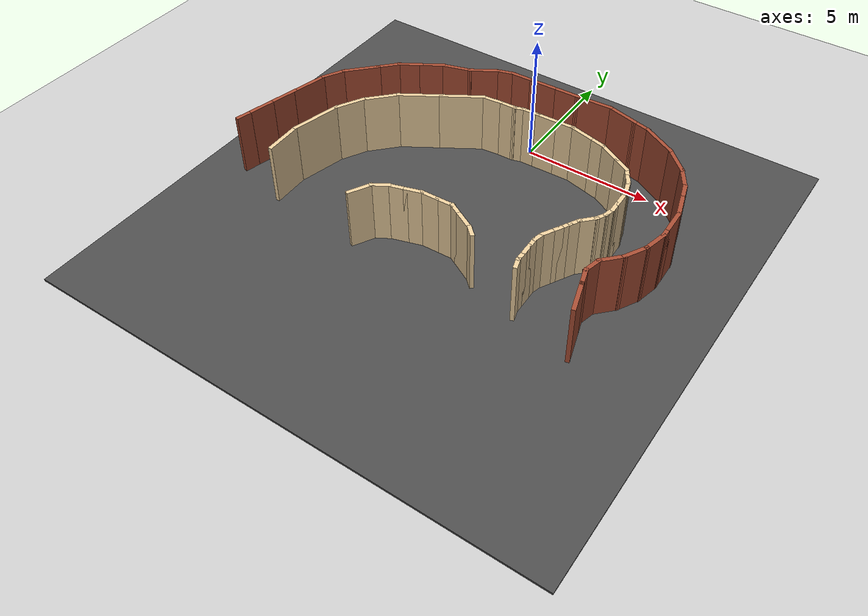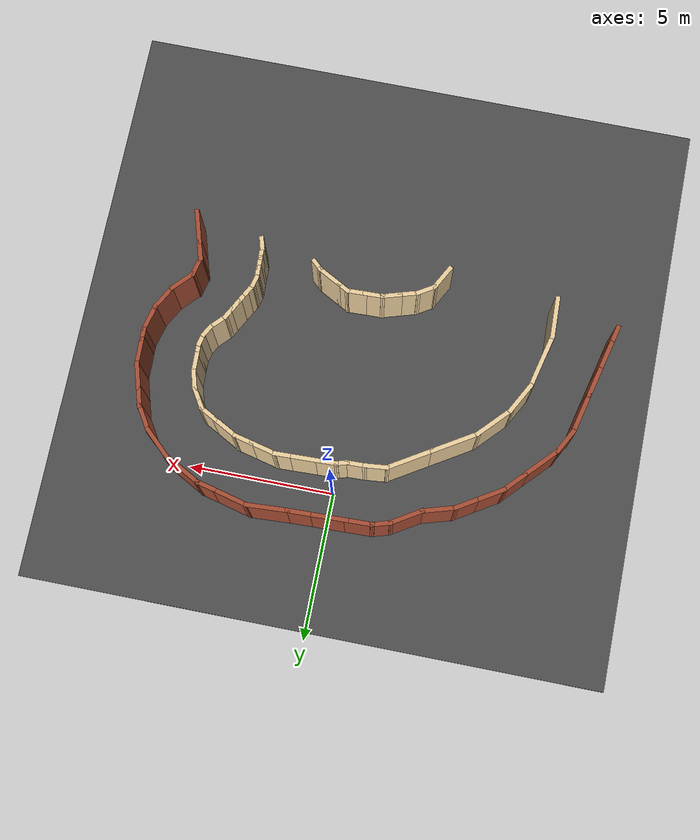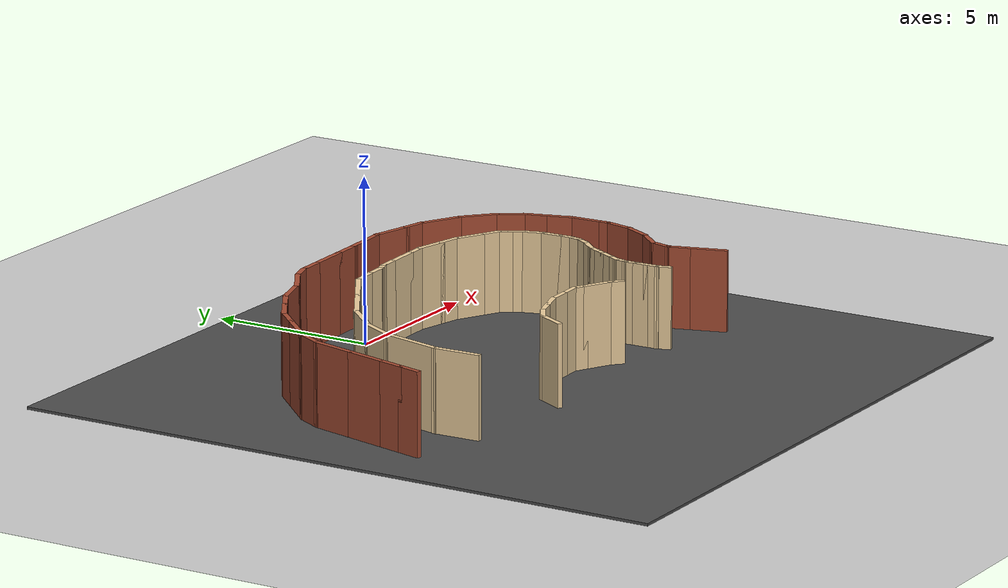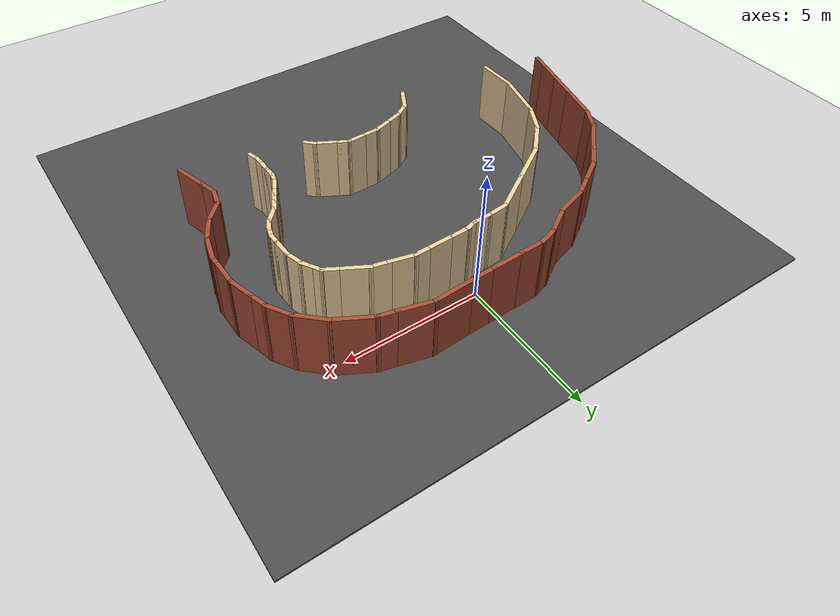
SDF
<sdf version="1.7">
 <world name="default">
  <model name="ground_plane">
   <static>1</static>
   <link name="link">
    <collision name="collision">
     <geometry><plane><normal>0 0 1</normal><size>100 100</size></plane></geometry>
     <surface><friction><ode><mu>100</mu><mu2>50</mu2></ode></friction></surface>
    </collision>
    <visual name="visual">
     <cast_shadows>0</cast_shadows>
     <geometry><plane><normal>0 0 1</normal><size>100 100</size></plane></geometry>
     <material>
      <script><uri>file://media/materials/scripts/gazebo.material</uri><name>Gazebo/Grey</name></script>
     </material>
    </visual>
   </link>
  </model>
  <model name="one">
   <pose>-0.558096 -6.76424 0 0 0 -1.54151</pose>
   <link name="Wall_364">
    <collision name="Wall_364_Collision">
     <geometry><box><size>1.32631 0.15 2.5</size></box></geometry>
     <pose>0 0 1.25 0 -0 0</pose>
    </collision>
    <visual name="Wall_364_Visual">
     <pose>0 0 1.25 0 -0 0</pose>
     <geometry><box><size>1.32631 0.15 2.5</size></box></geometry>
     <material>
      <script><uri>file://media/materials/scripts/gazebo.material</uri><name>Gazebo/Bricks</name></script>
      <ambient>1 1 1 1</ambient>
     </material>
     <meta><layer>0</layer></meta>
    </visual>
    <pose>-7.74423 3.9477 0 0 -0 1.29574</pose>
   </link>
   <link name="Wall_365">
    <collision name="Wall_365_Collision">
     <geometry><box><size>0.75 0.15 2.5</size></box></geometry>
     <pose>0 0 1.25 0 -0 0</pose>
    </collision>
    <visual name="Wall_365_Visual">
     <pose>0 0 1.25 0 -0 0</pose>
     <geometry><box><size>0.75 0.15 2.5</size></box></geometry>
     <material>
      <script><uri>file://media/materials/scripts/gazebo.material</uri><name>Gazebo/Bricks</name></script>
      <ambient>1 1 1 1</ambient>
     </material>
     <meta><layer>0</layer></meta>
    </visual>
    <pose>-7.50685 4.80352 0 0 -0 1.309</pose>
   </link>
   <link name="Wall_366">
    <collision name="Wall_366_Collision">
     <geometry><box><size>1.5 0.15 2.5</size></box></geometry>
     <pose>0 0 1.25 0 -0 0</pose>
    </collision>
    <visual name="Wall_366_Visual">
     <pose>0 0 1.25 0 -0 0</pose>
     <geometry><box><size>1.5 0.15 2.5</size></box></geometry>
     <material>
      <script><uri>file://media/materials/scripts/gazebo.material</uri><name>Gazebo/Bricks</name></script>
      <ambient>1 1 1 1</ambient>
     </material>
     <meta><layer>0</layer></meta>
    </visual>
    <pose>-7.0917 5.67786 0 0 -0 1.0472</pose>
   </link>
   <link name="Wall_367">
    <collision name="Wall_367_Collision">
     <geometry><box><size>1.25 0.15 2.5</size></box></geometry>
     <pose>0 0 1.25 0 -0 0</pose>
    </collision>
    <visual name="Wall_367_Visual">
     <pose>0 0 1.25 0 -0 0</pose>
     <geometry><box><size>1.25 0.15 2.5</size></box></geometry>
     <material>
      <script><uri>file://media/materials/scripts/gazebo.material</uri><name>Gazebo/Bricks</name></script>
      <ambient>1 1 1 1</ambient>
     </material>
     <meta><layer>0</layer></meta>
    </visual>
    <pose>-6.36529 6.65134 0 0 -0 0.785398</pose>
   </link>
   <link name="Wall_368">
    <collision name="Wall_368_Collision">
     <geometry><box><size>1 0.15 2.5</size></box></geometry>
     <pose>0 0 1.25 0 -0 0</pose>
    </collision>
    <visual name="Wall_368_Visual">
     <pose>0 0 1.25 0 -0 0</pose>
     <geometry><box><size>1 0.15 2.5</size></box></geometry>
     <material>
      <script><uri>file://media/materials/scripts/gazebo.material</uri><name>Gazebo/Bricks</name></script>
      <ambient>1 1 1 1</ambient>
     </material>
     <meta><layer>0</layer></meta>
    </visual>
    <pose>-5.60832 7.25275 0 0 -0 0.523599</pose>
   </link>
   <link name="Wall_369">
    <collision name="Wall_369_Collision">
     <geometry><box><size>0.75 0.15 2.5</size></box></geometry>
     <pose>0 0 1.25 0 -0 0</pose>
    </collision>
    <visual name="Wall_369_Visual">
     <pose>0 0 1.25 0 -0 0</pose>
     <geometry><box><size>0.75 0.15 2.5</size></box></geometry>
     <material>
      <script><uri>file://media/materials/scripts/gazebo.material</uri><name>Gazebo/Bricks</name></script>
      <ambient>1 1 1 1</ambient>
     </material>
     <meta><layer>0</layer></meta>
    </visual>
    <pose>-4.95048 7.54289 0 0 -0 0.261799</pose>
   </link>
   <link name="Wall_370">
    <collision name="Wall_370_Collision">
     <geometry><box><size>1 0.15 2.5</size></box></geometry>
     <pose>0 0 1.25 0 -0 0</pose>
    </collision>
    <visual name="Wall_370_Visual">
     <pose>0 0 1.25 0 -0 0</pose>
     <geometry><box><size>1 0.15 2.5</size></box></geometry>
     <material>
      <script><uri>file://media/materials/scripts/gazebo.material</uri><name>Gazebo/Bricks</name></script>
      <ambient>1 1 1 1</ambient>
     </material>
     <meta><layer>0</layer></meta>
    </visual>
    <pose>-4.25019 7.73054 0 0 -0 0.261799</pose>
   </link>
   <link name="Wall_371">
    <collision name="Wall_371_Collision">
     <geometry><box><size>1 0.15 2.5</size></box></geometry>
     <pose>0 0 1.25 0 -0 0</pose>
    </collision>
    <visual name="Wall_371_Visual">
     <pose>0 0 1.25 0 -0 0</pose>
     <geometry><box><size>1 0.15 2.5</size></box></geometry>
     <material>
      <script><uri>file://media/materials/scripts/gazebo.material</uri><name>Gazebo/Bricks</name></script>
      <ambient>1 1 1 1</ambient>
     </material>
     <meta><layer>0</layer></meta>
    </visual>
    <pose>-3.41467 7.84054 0 0 -0 0</pose>
   </link>
   <link name="Wall_372">
    <collision name="Wall_372_Collision">
     <geometry><box><size>0.5 0.15 2.5</size></box></geometry>
     <pose>0 0 1.25 0 -0 0</pose>
    </collision>
    <visual name="Wall_372_Visual">
     <pose>0 0 1.25 0 -0 0</pose>
     <geometry><box><size>0.5 0.15 2.5</size></box></geometry>
     <material>
      <script><uri>file://media/materials/scripts/gazebo.material</uri><name>Gazebo/Bricks</name></script>
      <ambient>1 1 1 1</ambient>
     </material>
     <meta><layer>0</layer></meta>
    </visual>
    <pose>-2.81467 7.84054 0 0 -0 0</pose>
   </link>
   <link name="Wall_373">
    <collision name="Wall_373_Collision">
     <geometry><box><size>1 0.15 2.5</size></box></geometry>
     <pose>0 0 1.25 0 -0 0</pose>
    </collision>
    <visual name="Wall_373_Visual">
     <pose>0 0 1.25 0 -0 0</pose>
     <geometry><box><size>1 0.15 2.5</size></box></geometry>
     <material>
      <script><uri>file://media/materials/scripts/gazebo.material</uri><name>Gazebo/Bricks</name></script>
      <ambient>1 1 1 1</ambient>
     </material>
     <meta><layer>0</layer></meta>
    </visual>
    <pose>-2.22915 7.73054 0 0 -0 -0.261799</pose>
   </link>
   <link name="Wall_374">
    <collision name="Wall_374_Collision">
     <geometry><box><size>1 0.15 2.5</size></box></geometry>
     <pose>0 0 1.25 0 -0 0</pose>
    </collision>
    <visual name="Wall_374_Visual">
     <pose>0 0 1.25 0 -0 0</pose>
     <geometry><box><size>1 0.15 2.5</size></box></geometry>
     <material>
      <script><uri>file://media/materials/scripts/gazebo.material</uri><name>Gazebo/Bricks</name></script>
      <ambient>1 1 1 1</ambient>
     </material>
     <meta><layer>0</layer></meta>
    </visual>
    <pose>-1.45057 7.40804 0 0 -0 -0.523599</pose>
   </link>
   <link name="Wall_375">
    <collision name="Wall_375_Collision">
     <geometry><box><size>1 0.15 2.5</size></box></geometry>
     <pose>0 0 1.25 0 -0 0</pose>
    </collision>
    <visual name="Wall_375_Visual">
     <pose>0 0 1.25 0 -0 0</pose>
     <geometry><box><size>1 0.15 2.5</size></box></geometry>
     <material>
      <script><uri>file://media/materials/scripts/gazebo.material</uri><name>Gazebo/Bricks</name></script>
      <ambient>1 1 1 1</ambient>
     </material>
     <meta><layer>0</layer></meta>
    </visual>
    <pose>-0.781989 6.89502 0 0 -0 -0.785398</pose>
   </link>
   <link name="Wall_376">
    <collision name="Wall_376_Collision">
     <geometry><box><size>0.75 0.15 2.5</size></box></geometry>
     <pose>0 0 1.25 0 -0 0</pose>
    </collision>
    <visual name="Wall_376_Visual">
     <pose>0 0 1.25 0 -0 0</pose>
     <geometry><box><size>0.75 0.15 2.5</size></box></geometry>
     <material>
      <script><uri>file://media/materials/scripts/gazebo.material</uri><name>Gazebo/Bricks</name></script>
      <ambient>1 1 1 1</ambient>
     </material>
     <meta><layer>0</layer></meta>
    </visual>
    <pose>-0.191691 6.51685 0 0 -0 -0.261799</pose>
   </link>
   <link name="Wall_377">
    <collision name="Wall_377_Collision">
     <geometry><box><size>0.75 0.15 2.5</size></box></geometry>
     <pose>0 0 1.25 0 -0 0</pose>
    </collision>
    <visual name="Wall_377_Visual">
     <pose>0 0 1.25 0 -0 0</pose>
     <geometry><box><size>0.75 0.15 2.5</size></box></geometry>
     <material>
      <script><uri>file://media/materials/scripts/gazebo.material</uri><name>Gazebo/Bricks</name></script>
      <ambient>1 1 1 1</ambient>
     </material>
     <meta><layer>0</layer></meta>
    </visual>
    <pose>0.387865 6.51685 0 0 -0 0.261799</pose>
   </link>
   <link name="Wall_378">
    <collision name="Wall_378_Collision">
     <geometry><box><size>1.25 0.15 2.5</size></box></geometry>
     <pose>0 0 1.25 0 -0 0</pose>
    </collision>
    <visual name="Wall_378_Visual">
     <pose>0 0 1.25 0 -0 0</pose>
     <geometry><box><size>1.25 0.15 2.5</size></box></geometry>
     <material>
      <script><uri>file://media/materials/scripts/gazebo.material</uri><name>Gazebo/Bricks</name></script>
      <ambient>1 1 1 1</ambient>
     </material>
     <meta><layer>0</layer></meta>
    </visual>
    <pose>1.2089 6.73685 0 0 -0 0.261799</pose>
   </link>
   <link name="Wall_397">
    <collision name="Wall_397_Collision">
     <geometry><box><size>1 0.15 2.5</size></box></geometry>
     <pose>0 0 1.25 0 -0 0</pose>
    </collision>
    <visual name="Wall_397_Visual">
     <pose>0 0 1.25 0 -0 0</pose>
     <geometry><box><size>1 0.15 2.5</size></box></geometry>
     <material>
      <script><uri>file://media/materials/scripts/gazebo.material</uri><name>Gazebo/Bricks</name></script>
      <ambient>1 1 1 1</ambient>
     </material>
     <meta><layer>0</layer></meta>
    </visual>
    <pose>-7.86919 -0.35856 0 0 -0 1.5708</pose>
   </link>
   <link name="Wall_398">
    <collision name="Wall_398_Collision">
     <geometry><box><size>1.25 0.15 2.5</size></box></geometry>
     <pose>0 0 1.25 0 -0 0</pose>
    </collision>
    <visual name="Wall_398_Visual">
     <pose>0 0 1.25 0 -0 0</pose>
     <geometry><box><size>1.25 0.15 2.5</size></box></geometry>
     <material>
      <script><uri>file://media/materials/scripts/gazebo.material</uri><name>Gazebo/Bricks</name></script>
      <ambient>1 1 1 1</ambient>
     </material>
     <meta><layer>0</layer></meta>
    </visual>
    <pose>-7.86919 0.61644 0 0 -0 1.5708</pose>
   </link>
   <link name="Wall_399">
    <collision name="Wall_399_Collision">
     <geometry><box><size>1 0.15 2.5</size></box></geometry>
     <pose>0 0 1.25 0 -0 0</pose>
    </collision>
    <visual name="Wall_399_Visual">
     <pose>0 0 1.25 0 -0 0</pose>
     <geometry><box><size>1 0.15 2.5</size></box></geometry>
     <material>
      <script><uri>file://media/materials/scripts/gazebo.material</uri><name>Gazebo/Bricks</name></script>
      <ambient>1 1 1 1</ambient>
     </material>
     <meta><layer>0</layer></meta>
    </visual>
    <pose>-7.86919 1.59144 0 0 -0 1.5708</pose>
   </link>
   <link name="Wall_400">
    <collision name="Wall_400_Collision">
     <geometry><box><size>1.51566 0.15 2.5</size></box></geometry>
     <pose>0 0 1.25 0 -0 0</pose>
    </collision>
    <visual name="Wall_400_Visual">
     <pose>0 0 1.25 0 -0 0</pose>
     <geometry><box><size>1.51566 0.15 2.5</size></box></geometry>
     <material>
      <script><uri>file://media/materials/scripts/gazebo.material</uri><name>Gazebo/Bricks</name></script>
      <ambient>1 1 1 1</ambient>
     </material>
     <meta><layer>0</layer></meta>
    </visual>
    <pose>-7.88658 2.69905 0 0 -0 1.59627</pose>
   </link>
   <link name="Wall_402">
    <collision name="Wall_402_Collision">
     <geometry><box><size>0.75 0.15 2.5</size></box></geometry>
     <pose>0 0 1.25 0 -0 0</pose>
    </collision>
    <visual name="Wall_402_Visual">
     <pose>0 0 1.25 0 -0 0</pose>
     <geometry><box><size>0.75 0.15 2.5</size></box></geometry>
     <material>
      <script><uri>file://media/materials/scripts/gazebo.material</uri><name>Gazebo/Bricks</name></script>
      <ambient>1 1 1 1</ambient>
     </material>
     <meta><layer>0</layer></meta>
    </visual>
    <pose>-7.79155 -1.07334 0 0 -0 -1.309</pose>
   </link>
   <link name="Wall_403">
    <collision name="Wall_403_Collision">
     <geometry><box><size>1.25 0.15 2.5</size></box></geometry>
     <pose>0 0 1.25 0 -0 0</pose>
    </collision>
    <visual name="Wall_403_Visual">
     <pose>0 0 1.25 0 -0 0</pose>
     <geometry><box><size>1.25 0.15 2.5</size></box></geometry>
     <material>
      <script><uri>file://media/materials/scripts/gazebo.material</uri><name>Gazebo/Bricks</name></script>
      <ambient>1 1 1 1</ambient>
     </material>
     <meta><layer>0</layer></meta>
    </visual>
    <pose>-7.4389 -1.83943 0 0 -0 -1.0472</pose>
   </link>
   <link name="Wall_404">
    <collision name="Wall_404_Collision">
     <geometry><box><size>1.25 0.15 2.5</size></box></geometry>
     <pose>0 0 1.25 0 -0 0</pose>
    </collision>
    <visual name="Wall_404_Visual">
     <pose>0 0 1.25 0 -0 0</pose>
     <geometry><box><size>1.25 0.15 2.5</size></box></geometry>
     <material>
      <script><uri>file://media/materials/scripts/gazebo.material</uri><name>Gazebo/Bricks</name></script>
      <ambient>1 1 1 1</ambient>
     </material>
     <meta><layer>0</layer></meta>
    </visual>
    <pose>-7.02155 -2.847 0 0 -0 -1.309</pose>
   </link>
   <link name="Wall_405">
    <collision name="Wall_405_Collision">
     <geometry><box><size>1 0.15 2.5</size></box></geometry>
     <pose>0 0 1.25 0 -0 0</pose>
    </collision>
    <visual name="Wall_405_Visual">
     <pose>0 0 1.25 0 -0 0</pose>
     <geometry><box><size>1 0.15 2.5</size></box></geometry>
     <material>
      <script><uri>file://media/materials/scripts/gazebo.material</uri><name>Gazebo/Bricks</name></script>
      <ambient>1 1 1 1</ambient>
     </material>
     <meta><layer>0</layer></meta>
    </visual>
    <pose>-6.6667 -3.74632 0 0 -0 -1.0472</pose>
   </link>
   <link name="Wall_406">
    <collision name="Wall_406_Collision">
     <geometry><box><size>1 0.15 2.5</size></box></geometry>
     <pose>0 0 1.25 0 -0 0</pose>
    </collision>
    <visual name="Wall_406_Visual">
     <pose>0 0 1.25 0 -0 0</pose>
     <geometry><box><size>1 0.15 2.5</size></box></geometry>
     <material>
      <script><uri>file://media/materials/scripts/gazebo.material</uri><name>Gazebo/Bricks</name></script>
      <ambient>1 1 1 1</ambient>
     </material>
     <meta><layer>0</layer></meta>
    </visual>
    <pose>-6.2417 -4.48245 0 0 -0 -1.0472</pose>
   </link>
   <link name="Wall_407">
    <collision name="Wall_407_Collision">
     <geometry><box><size>1 0.15 2.5</size></box></geometry>
     <pose>0 0 1.25 0 -0 0</pose>
    </collision>
    <visual name="Wall_407_Visual">
     <pose>0 0 1.25 0 -0 0</pose>
     <geometry><box><size>1 0.15 2.5</size></box></geometry>
     <material>
      <script><uri>file://media/materials/scripts/gazebo.material</uri><name>Gazebo/Bricks</name></script>
      <ambient>1 1 1 1</ambient>
     </material>
     <meta><layer>0</layer></meta>
    </visual>
    <pose>-5.72868 -5.15103 0 0 -0 -0.785398</pose>
   </link>
   <link name="Wall_408">
    <collision name="Wall_408_Collision">
     <geometry><box><size>1.5 0.15 2.5</size></box></geometry>
     <pose>0 0 1.25 0 -0 0</pose>
    </collision>
    <visual name="Wall_408_Visual">
     <pose>0 0 1.25 0 -0 0</pose>
     <geometry><box><size>1.5 0.15 2.5</size></box></geometry>
     <material>
      <script><uri>file://media/materials/scripts/gazebo.material</uri><name>Gazebo/Bricks</name></script>
      <ambient>1 1 1 1</ambient>
     </material>
     <meta><layer>0</layer></meta>
    </visual>
    <pose>-4.95086 -5.92884 0 0 -0 -0.785398</pose>
   </link>
   <link name="Wall_409">
    <collision name="Wall_409_Collision">
     <geometry><box><size>1 0.15 2.5</size></box></geometry>
     <pose>0 0 1.25 0 -0 0</pose>
    </collision>
    <visual name="Wall_409_Visual">
     <pose>0 0 1.25 0 -0 0</pose>
     <geometry><box><size>1 0.15 2.5</size></box></geometry>
     <material>
      <script><uri>file://media/materials/scripts/gazebo.material</uri><name>Gazebo/Bricks</name></script>
      <ambient>1 1 1 1</ambient>
     </material>
     <meta><layer>0</layer></meta>
    </visual>
    <pose>-4.1055 -6.61864 0 0 -0 -0.523599</pose>
   </link>
   <link name="Wall_410">
    <collision name="Wall_410_Collision">
     <geometry><box><size>1.5 0.15 2.5</size></box></geometry>
     <pose>0 0 1.25 0 -0 0</pose>
    </collision>
    <visual name="Wall_410_Visual">
     <pose>0 0 1.25 0 -0 0</pose>
     <geometry><box><size>1.5 0.15 2.5</size></box></geometry>
     <material>
      <script><uri>file://media/materials/scripts/gazebo.material</uri><name>Gazebo/Bricks</name></script>
      <ambient>1 1 1 1</ambient>
     </material>
     <meta><layer>0</layer></meta>
    </visual>
    <pose>-3.08544 -7.00584 0 0 -0 -0.261799</pose>
   </link>
   <link name="Wall_411">
    <collision name="Wall_411_Collision">
     <geometry><box><size>1.25 0.15 2.5</size></box></geometry>
     <pose>0 0 1.25 0 -0 0</pose>
    </collision>
    <visual name="Wall_411_Visual">
     <pose>0 0 1.25 0 -0 0</pose>
     <geometry><box><size>1.25 0.15 2.5</size></box></geometry>
     <material>
      <script><uri>file://media/materials/scripts/gazebo.material</uri><name>Gazebo/Bricks</name></script>
      <ambient>1 1 1 1</ambient>
     </material>
     <meta><layer>0</layer></meta>
    </visual>
    <pose>-1.90218 -7.3229 0 0 -0 -0.261799</pose>
   </link>
   <link name="Wall_412">
    <collision name="Wall_412_Collision">
     <geometry><box><size>1 0.15 2.5</size></box></geometry>
     <pose>0 0 1.25 0 -0 0</pose>
    </collision>
    <visual name="Wall_412_Visual">
     <pose>0 0 1.25 0 -0 0</pose>
     <geometry><box><size>1 0.15 2.5</size></box></geometry>
     <material>
      <script><uri>file://media/materials/scripts/gazebo.material</uri><name>Gazebo/Bricks</name></script>
      <ambient>1 1 1 1</ambient>
     </material>
     <meta><layer>0</layer></meta>
    </visual>
    <pose>-0.960406 -7.57524 0 0 -0 -0.261799</pose>
   </link>
   <link name="Wall_413">
    <collision name="Wall_413_Collision">
     <geometry><box><size>0.75 0.15 2.5</size></box></geometry>
     <pose>0 0 1.25 0 -0 0</pose>
    </collision>
    <visual name="Wall_413_Visual">
     <pose>0 0 1.25 0 -0 0</pose>
     <geometry><box><size>0.75 0.15 2.5</size></box></geometry>
     <material>
      <script><uri>file://media/materials/scripts/gazebo.material</uri><name>Gazebo/Bricks</name></script>
      <ambient>1 1 1 1</ambient>
     </material>
     <meta><layer>0</layer></meta>
    </visual>
    <pose>-0.26011 -7.76289 0 0 -0 -0.261799</pose>
   </link>
   <link name="Wall_434">
    <collision name="Wall_434_Collision">
     <geometry><box><size>0.75 0.15 2.5</size></box></geometry>
     <pose>0 0 1.25 0 -0 0</pose>
    </collision>
    <visual name="Wall_434_Visual">
     <pose>0 0 1.25 0 -0 0</pose>
     <geometry><box><size>0.75 0.15 2.5</size></box></geometry>
     <material>
      <script><uri>file://media/materials/scripts/gazebo.material</uri><name>Gazebo/Grey</name></script>
      <ambient>0.921569 0.807843 0.615686 1</ambient>
     </material>
     <meta><layer>0</layer></meta>
    </visual>
    <pose>-5.99093 0.072961 0 0 -0 1.5708</pose>
   </link>
   <link name="Wall_435">
    <collision name="Wall_435_Collision">
     <geometry><box><size>0.5 0.15 2.5</size></box></geometry>
     <pose>0 0 1.25 0 -0 0</pose>
    </collision>
    <visual name="Wall_435_Visual">
     <pose>0 0 1.25 0 -0 0</pose>
     <geometry><box><size>0.5 0.15 2.5</size></box></geometry>
     <material>
      <script><uri>file://media/materials/scripts/gazebo.material</uri><name>Gazebo/Grey</name></script>
      <ambient>0.921569 0.807843 0.615686 1</ambient>
     </material>
     <meta><layer>0</layer></meta>
    </visual>
    <pose>-6.03622 0.541998 0 0 -0 1.8326</pose>
   </link>
   <link name="Wall_436">
    <collision name="Wall_436_Collision">
     <geometry><box><size>0.75 0.15 2.5</size></box></geometry>
     <pose>0 0 1.25 0 -0 0</pose>
    </collision>
    <visual name="Wall_436_Visual">
     <pose>0 0 1.25 0 -0 0</pose>
     <geometry><box><size>0.75 0.15 2.5</size></box></geometry>
     <material>
      <script><uri>file://media/materials/scripts/gazebo.material</uri><name>Gazebo/Grey</name></script>
      <ambient>0.921569 0.807843 0.615686 1</ambient>
     </material>
     <meta><layer>0</layer></meta>
    </visual>
    <pose>-6.08152 1.01103 0 0 -0 1.5708</pose>
   </link>
   <link name="Wall_437">
    <collision name="Wall_437_Collision">
     <geometry><box><size>1 0.15 2.5</size></box></geometry>
     <pose>0 0 1.25 0 -0 0</pose>
    </collision>
    <visual name="Wall_437_Visual">
     <pose>0 0 1.25 0 -0 0</pose>
     <geometry><box><size>1 0.15 2.5</size></box></geometry>
     <material>
      <script><uri>file://media/materials/scripts/gazebo.material</uri><name>Gazebo/Grey</name></script>
      <ambient>0.921569 0.807843 0.615686 1</ambient>
     </material>
     <meta><layer>0</layer></meta>
    </visual>
    <pose>-6.08152 1.73603 0 0 -0 1.5708</pose>
   </link>
   <link name="Wall_438">
    <collision name="Wall_438_Collision">
     <geometry><box><size>0.75 0.15 2.5</size></box></geometry>
     <pose>0 0 1.25 0 -0 0</pose>
    </collision>
    <visual name="Wall_438_Visual">
     <pose>0 0 1.25 0 -0 0</pose>
     <geometry><box><size>0.75 0.15 2.5</size></box></geometry>
     <material>
      <script><uri>file://media/materials/scripts/gazebo.material</uri><name>Gazebo/Grey</name></script>
      <ambient>0.921569 0.807843 0.615686 1</ambient>
     </material>
     <meta><layer>0</layer></meta>
    </visual>
    <pose>-6.08152 2.46103 0 0 -0 1.5708</pose>
   </link>
   <link name="Wall_439">
    <collision name="Wall_439_Collision">
     <geometry><box><size>1 0.15 2.5</size></box></geometry>
     <pose>0 0 1.25 0 -0 0</pose>
    </collision>
    <visual name="Wall_439_Visual">
     <pose>0 0 1.25 0 -0 0</pose>
     <geometry><box><size>1 0.15 2.5</size></box></geometry>
     <material>
      <script><uri>file://media/materials/scripts/gazebo.material</uri><name>Gazebo/Grey</name></script>
      <ambient>0.921569 0.807843 0.615686 1</ambient>
     </material>
     <meta><layer>0</layer></meta>
    </visual>
    <pose>-5.97152 3.17155 0 0 -0 1.309</pose>
   </link>
   <link name="Wall_440">
    <collision name="Wall_440_Collision">
     <geometry><box><size>0.75 0.15 2.5</size></box></geometry>
     <pose>0 0 1.25 0 -0 0</pose>
    </collision>
    <visual name="Wall_440_Visual">
     <pose>0 0 1.25 0 -0 0</pose>
     <geometry><box><size>0.75 0.15 2.5</size></box></geometry>
     <material>
      <script><uri>file://media/materials/scripts/gazebo.material</uri><name>Gazebo/Grey</name></script>
      <ambient>0.921569 0.807843 0.615686 1</ambient>
     </material>
     <meta><layer>0</layer></meta>
    </visual>
    <pose>-5.78388 3.87185 0 0 -0 1.309</pose>
   </link>
   <link name="Wall_441">
    <collision name="Wall_441_Collision">
     <geometry><box><size>1 0.15 2.5</size></box></geometry>
     <pose>0 0 1.25 0 -0 0</pose>
    </collision>
    <visual name="Wall_441_Visual">
     <pose>0 0 1.25 0 -0 0</pose>
     <geometry><box><size>1 0.15 2.5</size></box></geometry>
     <material>
      <script><uri>file://media/materials/scripts/gazebo.material</uri><name>Gazebo/Grey</name></script>
      <ambient>0.921569 0.807843 0.615686 1</ambient>
     </material>
     <meta><layer>0</layer></meta>
    </visual>
    <pose>-5.49373 4.52969 0 0 -0 1.0472</pose>
   </link>
   <link name="Wall_442">
    <collision name="Wall_442_Collision">
     <geometry><box><size>0.75 0.15 2.5</size></box></geometry>
     <pose>0 0 1.25 0 -0 0</pose>
    </collision>
    <visual name="Wall_442_Visual">
     <pose>0 0 1.25 0 -0 0</pose>
     <geometry><box><size>0.75 0.15 2.5</size></box></geometry>
     <material>
      <script><uri>file://media/materials/scripts/gazebo.material</uri><name>Gazebo/Grey</name></script>
      <ambient>0.921569 0.807843 0.615686 1</ambient>
     </material>
     <meta><layer>0</layer></meta>
    </visual>
    <pose>-5.13123 5.15756 0 0 -0 1.0472</pose>
   </link>
   <link name="Wall_443">
    <collision name="Wall_443_Collision">
     <geometry><box><size>0.5 0.15 2.5</size></box></geometry>
     <pose>0 0 1.25 0 -0 0</pose>
    </collision>
    <visual name="Wall_443_Visual">
     <pose>0 0 1.25 0 -0 0</pose>
     <geometry><box><size>0.5 0.15 2.5</size></box></geometry>
     <material>
      <script><uri>file://media/materials/scripts/gazebo.material</uri><name>Gazebo/Grey</name></script>
      <ambient>0.921569 0.807843 0.615686 1</ambient>
     </material>
     <meta><layer>0</layer></meta>
    </visual>
    <pose>-4.82967 5.50486 0 0 -0 0.523599</pose>
   </link>
   <link name="Wall_444">
    <collision name="Wall_444_Collision">
     <geometry><box><size>0.5 0.15 2.5</size></box></geometry>
     <pose>0 0 1.25 0 -0 0</pose>
    </collision>
    <visual name="Wall_444_Visual">
     <pose>0 0 1.25 0 -0 0</pose>
     <geometry><box><size>0.5 0.15 2.5</size></box></geometry>
     <material>
      <script><uri>file://media/materials/scripts/gazebo.material</uri><name>Gazebo/Grey</name></script>
      <ambient>0.921569 0.807843 0.615686 1</ambient>
     </material>
     <meta><layer>0</layer></meta>
    </visual>
    <pose>-4.52657 5.67987 0 0 -0 0.523599</pose>
   </link>
   <link name="Wall_445">
    <collision name="Wall_445_Collision">
     <geometry><box><size>0.75 0.15 2.5</size></box></geometry>
     <pose>0 0 1.25 0 -0 0</pose>
    </collision>
    <visual name="Wall_445_Visual">
     <pose>0 0 1.25 0 -0 0</pose>
     <geometry><box><size>0.75 0.15 2.5</size></box></geometry>
     <material>
      <script><uri>file://media/materials/scripts/gazebo.material</uri><name>Gazebo/Grey</name></script>
      <ambient>0.921569 0.807843 0.615686 1</ambient>
     </material>
     <meta><layer>0</layer></meta>
    </visual>
    <pose>-4.08523 5.84501 0 0 -0 0.261799</pose>
   </link>
   <link name="Wall_446">
    <collision name="Wall_446_Collision">
     <geometry><box><size>0.75 0.15 2.5</size></box></geometry>
     <pose>0 0 1.25 0 -0 0</pose>
    </collision>
    <visual name="Wall_446_Visual">
     <pose>0 0 1.25 0 -0 0</pose>
     <geometry><box><size>0.75 0.15 2.5</size></box></geometry>
     <material>
      <script><uri>file://media/materials/scripts/gazebo.material</uri><name>Gazebo/Grey</name></script>
      <ambient>0.921569 0.807843 0.615686 1</ambient>
     </material>
     <meta><layer>0</layer></meta>
    </visual>
    <pose>-3.49546 5.92266 0 0 -0 0</pose>
   </link>
   <link name="Wall_447">
    <collision name="Wall_447_Collision">
     <geometry><box><size>0.5 0.15 2.5</size></box></geometry>
     <pose>0 0 1.25 0 -0 0</pose>
    </collision>
    <visual name="Wall_447_Visual">
     <pose>0 0 1.25 0 -0 0</pose>
     <geometry><box><size>0.5 0.15 2.5</size></box></geometry>
     <material>
      <script><uri>file://media/materials/scripts/gazebo.material</uri><name>Gazebo/Grey</name></script>
      <ambient>0.921569 0.807843 0.615686 1</ambient>
     </material>
     <meta><layer>0</layer></meta>
    </visual>
    <pose>-3.02046 5.92266 0 0 -0 0</pose>
   </link>
   <link name="Wall_448">
    <collision name="Wall_448_Collision">
     <geometry><box><size>0.5 0.15 2.5</size></box></geometry>
     <pose>0 0 1.25 0 -0 0</pose>
    </collision>
    <visual name="Wall_448_Visual">
     <pose>0 0 1.25 0 -0 0</pose>
     <geometry><box><size>0.5 0.15 2.5</size></box></geometry>
     <material>
      <script><uri>file://media/materials/scripts/gazebo.material</uri><name>Gazebo/Grey</name></script>
      <ambient>0.921569 0.807843 0.615686 1</ambient>
     </material>
     <meta><layer>0</layer></meta>
    </visual>
    <pose>-2.67642 5.87736 0 0 -0 -0.261799</pose>
   </link>
   <link name="Wall_449">
    <collision name="Wall_449_Collision">
     <geometry><box><size>0.5 0.15 2.5</size></box></geometry>
     <pose>0 0 1.25 0 -0 0</pose>
    </collision>
    <visual name="Wall_449_Visual">
     <pose>0 0 1.25 0 -0 0</pose>
     <geometry><box><size>0.5 0.15 2.5</size></box></geometry>
     <material>
      <script><uri>file://media/materials/scripts/gazebo.material</uri><name>Gazebo/Grey</name></script>
      <ambient>0.921569 0.807843 0.615686 1</ambient>
     </material>
     <meta><layer>0</layer></meta>
    </visual>
    <pose>-2.35583 5.74457 0 0 -0 -0.523599</pose>
   </link>
   <link name="Wall_450">
    <collision name="Wall_450_Collision">
     <geometry><box><size>0.75 0.15 2.5</size></box></geometry>
     <pose>0 0 1.25 0 -0 0</pose>
    </collision>
    <visual name="Wall_450_Visual">
     <pose>0 0 1.25 0 -0 0</pose>
     <geometry><box><size>0.75 0.15 2.5</size></box></geometry>
     <material>
      <script><uri>file://media/materials/scripts/gazebo.material</uri><name>Gazebo/Grey</name></script>
      <ambient>0.921569 0.807843 0.615686 1</ambient>
     </material>
     <meta><layer>0</layer></meta>
    </visual>
    <pose>-1.99214 5.44494 0 0 -0 -0.785398</pose>
   </link>
   <link name="Wall_451">
    <collision name="Wall_451_Collision">
     <geometry><box><size>0.5 0.15 2.5</size></box></geometry>
     <pose>0 0 1.25 0 -0 0</pose>
    </collision>
    <visual name="Wall_451_Visual">
     <pose>0 0 1.25 0 -0 0</pose>
     <geometry><box><size>0.5 0.15 2.5</size></box></geometry>
     <material>
      <script><uri>file://media/materials/scripts/gazebo.material</uri><name>Gazebo/Grey</name></script>
      <ambient>0.921569 0.807843 0.615686 1</ambient>
     </material>
     <meta><layer>0</layer></meta>
    </visual>
    <pose>-1.62845 5.1453 0 0 -0 -0.523599</pose>
   </link>
   <link name="Wall_452">
    <collision name="Wall_452_Collision">
     <geometry><box><size>0.5 0.15 2.5</size></box></geometry>
     <pose>0 0 1.25 0 -0 0</pose>
    </collision>
    <visual name="Wall_452_Visual">
     <pose>0 0 1.25 0 -0 0</pose>
     <geometry><box><size>0.5 0.15 2.5</size></box></geometry>
     <material>
      <script><uri>file://media/materials/scripts/gazebo.material</uri><name>Gazebo/Grey</name></script>
      <ambient>0.921569 0.807843 0.615686 1</ambient>
     </material>
     <meta><layer>0</layer></meta>
    </visual>
    <pose>-1.32535 4.9703 0 0 -0 -0.523599</pose>
   </link>
   <link name="Wall_453">
    <collision name="Wall_453_Collision">
     <geometry><box><size>0.5 0.15 2.5</size></box></geometry>
     <pose>0 0 1.25 0 -0 0</pose>
    </collision>
    <visual name="Wall_453_Visual">
     <pose>0 0 1.25 0 -0 0</pose>
     <geometry><box><size>0.5 0.15 2.5</size></box></geometry>
     <material>
      <script><uri>file://media/materials/scripts/gazebo.material</uri><name>Gazebo/Grey</name></script>
      <ambient>0.921569 0.807843 0.615686 1</ambient>
     </material>
     <meta><layer>0</layer></meta>
    </visual>
    <pose>-1.02224 4.7953 0 0 -0 -0.523599</pose>
   </link>
   <link name="Wall_454">
    <collision name="Wall_454_Collision">
     <geometry><box><size>0.5 0.15 2.5</size></box></geometry>
     <pose>0 0 1.25 0 -0 0</pose>
    </collision>
    <visual name="Wall_454_Visual">
     <pose>0 0 1.25 0 -0 0</pose>
     <geometry><box><size>0.5 0.15 2.5</size></box></geometry>
     <material>
      <script><uri>file://media/materials/scripts/gazebo.material</uri><name>Gazebo/Grey</name></script>
      <ambient>0.921569 0.807843 0.615686 1</ambient>
     </material>
     <meta><layer>0</layer></meta>
    </visual>
    <pose>-0.719128 4.62031 0 0 -0 -0.523599</pose>
   </link>
   <link name="Wall_455">
    <collision name="Wall_455_Collision">
     <geometry><box><size>0.5 0.15 2.5</size></box></geometry>
     <pose>0 0 1.25 0 -0 0</pose>
    </collision>
    <visual name="Wall_455_Visual">
     <pose>0 0 1.25 0 -0 0</pose>
     <geometry><box><size>0.5 0.15 2.5</size></box></geometry>
     <material>
      <script><uri>file://media/materials/scripts/gazebo.material</uri><name>Gazebo/Grey</name></script>
      <ambient>0.921569 0.807843 0.615686 1</ambient>
     </material>
     <meta><layer>0</layer></meta>
    </visual>
    <pose>-0.398537 4.48751 0 0 -0 -0.261799</pose>
   </link>
   <link name="Wall_456">
    <collision name="Wall_456_Collision">
     <geometry><box><size>0.5 0.15 2.5</size></box></geometry>
     <pose>0 0 1.25 0 -0 0</pose>
    </collision>
    <visual name="Wall_456_Visual">
     <pose>0 0 1.25 0 -0 0</pose>
     <geometry><box><size>0.5 0.15 2.5</size></box></geometry>
     <material>
      <script><uri>file://media/materials/scripts/gazebo.material</uri><name>Gazebo/Grey</name></script>
      <ambient>0.921569 0.807843 0.615686 1</ambient>
     </material>
     <meta><layer>0</layer></meta>
    </visual>
    <pose>-0.0545 4.44222 0 0 -0 0</pose>
   </link>
   <link name="Wall_457">
    <collision name="Wall_457_Collision">
     <geometry><box><size>0.5 0.15 2.5</size></box></geometry>
     <pose>0 0 1.25 0 -0 0</pose>
    </collision>
    <visual name="Wall_457_Visual">
     <pose>0 0 1.25 0 -0 0</pose>
     <geometry><box><size>0.5 0.15 2.5</size></box></geometry>
     <material>
      <script><uri>file://media/materials/scripts/gazebo.material</uri><name>Gazebo/Grey</name></script>
      <ambient>0.921569 0.807843 0.615686 1</ambient>
     </material>
     <meta><layer>0</layer></meta>
    </visual>
    <pose>0.2955 4.44222 0 0 -0 0</pose>
   </link>
   <link name="Wall_458">
    <collision name="Wall_458_Collision">
     <geometry><box><size>0.5 0.15 2.5</size></box></geometry>
     <pose>0 0 1.25 0 -0 0</pose>
    </collision>
    <visual name="Wall_458_Visual">
     <pose>0 0 1.25 0 -0 0</pose>
     <geometry><box><size>0.5 0.15 2.5</size></box></geometry>
     <material>
      <script><uri>file://media/materials/scripts/gazebo.material</uri><name>Gazebo/Grey</name></script>
      <ambient>0.921569 0.807843 0.615686 1</ambient>
     </material>
     <meta><layer>0</layer></meta>
    </visual>
    <pose>0.6455 4.44222 0 0 -0 0</pose>
   </link>
   <link name="Wall_459">
    <collision name="Wall_459_Collision">
     <geometry><box><size>0.5 0.15 2.5</size></box></geometry>
     <pose>0 0 1.25 0 -0 0</pose>
    </collision>
    <visual name="Wall_459_Visual">
     <pose>0 0 1.25 0 -0 0</pose>
     <geometry><box><size>0.5 0.15 2.5</size></box></geometry>
     <material>
      <script><uri>file://media/materials/scripts/gazebo.material</uri><name>Gazebo/Grey</name></script>
      <ambient>0.921569 0.807843 0.615686 1</ambient>
     </material>
     <meta><layer>0</layer></meta>
    </visual>
    <pose>0.989537 4.48751 0 0 -0 0.261799</pose>
   </link>
   <link name="Wall_487">
    <collision name="Wall_487_Collision">
     <geometry><box><size>0.5 0.15 2.5</size></box></geometry>
     <pose>0 0 1.25 0 -0 0</pose>
    </collision>
    <visual name="Wall_487_Visual">
     <pose>0 0 1.25 0 -0 0</pose>
     <geometry><box><size>0.5 0.15 2.5</size></box></geometry>
     <material>
      <script><uri>file://media/materials/scripts/gazebo.material</uri><name>Gazebo/Grey</name></script>
      <ambient>0.921569 0.807843 0.615686 1</ambient>
     </material>
     <meta><layer>0</layer></meta>
    </visual>
    <pose>0.530934 2.49845 0 0 -0 -2.35619</pose>
   </link>
   <link name="Wall_488">
    <collision name="Wall_488_Collision">
     <geometry><box><size>1 0.15 2.5</size></box></geometry>
     <pose>0 0 1.25 0 -0 0</pose>
    </collision>
    <visual name="Wall_488_Visual">
     <pose>0 0 1.25 0 -0 0</pose>
     <geometry><box><size>1 0.15 2.5</size></box></geometry>
     <material>
      <script><uri>file://media/materials/scripts/gazebo.material</uri><name>Gazebo/Grey</name></script>
      <ambient>0.921569 0.807843 0.615686 1</ambient>
     </material>
     <meta><layer>0</layer></meta>
    </visual>
    <pose>0.19469 2.00664 0 0 -0 -2.0944</pose>
   </link>
   <link name="Wall_489">
    <collision name="Wall_489_Collision">
     <geometry><box><size>0.5 0.15 2.5</size></box></geometry>
     <pose>0 0 1.25 0 -0 0</pose>
    </collision>
    <visual name="Wall_489_Visual">
     <pose>0 0 1.25 0 -0 0</pose>
     <geometry><box><size>0.5 0.15 2.5</size></box></geometry>
     <material>
      <script><uri>file://media/materials/scripts/gazebo.material</uri><name>Gazebo/Grey</name></script>
      <ambient>0.921569 0.807843 0.615686 1</ambient>
     </material>
     <meta><layer>0</layer></meta>
    </visual>
    <pose>-0.10531 1.48703 0 0 -0 -2.0944</pose>
   </link>
   <link name="Wall_490">
    <collision name="Wall_490_Collision">
     <geometry><box><size>0.75 0.15 2.5</size></box></geometry>
     <pose>0 0 1.25 0 -0 0</pose>
    </collision>
    <visual name="Wall_490_Visual">
     <pose>0 0 1.25 0 -0 0</pose>
     <geometry><box><size>0.75 0.15 2.5</size></box></geometry>
     <material>
      <script><uri>file://media/materials/scripts/gazebo.material</uri><name>Gazebo/Grey</name></script>
      <ambient>0.921569 0.807843 0.615686 1</ambient>
     </material>
     <meta><layer>0</layer></meta>
    </visual>
    <pose>-0.19281 1.03548 0 0 -0 -1.5708</pose>
   </link>
   <link name="Wall_491">
    <collision name="Wall_491_Collision">
     <geometry><box><size>0.75 0.15 2.5</size></box></geometry>
     <pose>0 0 1.25 0 -0 0</pose>
    </collision>
    <visual name="Wall_491_Visual">
     <pose>0 0 1.25 0 -0 0</pose>
     <geometry><box><size>0.75 0.15 2.5</size></box></geometry>
     <material>
      <script><uri>file://media/materials/scripts/gazebo.material</uri><name>Gazebo/Grey</name></script>
      <ambient>0.921569 0.807843 0.615686 1</ambient>
     </material>
     <meta><layer>0</layer></meta>
    </visual>
    <pose>-0.19281 0.435476 0 0 -0 -1.5708</pose>
   </link>
   <link name="Wall_492">
    <collision name="Wall_492_Collision">
     <geometry><box><size>0.75 0.15 2.5</size></box></geometry>
     <pose>0 0 1.25 0 -0 0</pose>
    </collision>
    <visual name="Wall_492_Visual">
     <pose>0 0 1.25 0 -0 0</pose>
     <geometry><box><size>0.75 0.15 2.5</size></box></geometry>
     <material>
      <script><uri>file://media/materials/scripts/gazebo.material</uri><name>Gazebo/Grey</name></script>
      <ambient>0.921569 0.807843 0.615686 1</ambient>
     </material>
     <meta><layer>0</layer></meta>
    </visual>
    <pose>-0.115164 -0.154302 0 0 -0 -1.309</pose>
   </link>
   <link name="Wall_493">
    <collision name="Wall_493_Collision">
     <geometry><box><size>0.75 0.15 2.5</size></box></geometry>
     <pose>0 0 1.25 0 -0 0</pose>
    </collision>
    <visual name="Wall_493_Visual">
     <pose>0 0 1.25 0 -0 0</pose>
     <geometry><box><size>0.75 0.15 2.5</size></box></geometry>
     <material>
      <script><uri>file://media/materials/scripts/gazebo.material</uri><name>Gazebo/Grey</name></script>
      <ambient>0.921569 0.807843 0.615686 1</ambient>
     </material>
     <meta><layer>0</layer></meta>
    </visual>
    <pose>0.040127 -0.733858 0 0 -0 -1.309</pose>
   </link>
   <link name="Wall_494">
    <collision name="Wall_494_Collision">
     <geometry><box><size>0.75 0.15 2.5</size></box></geometry>
     <pose>0 0 1.25 0 -0 0</pose>
    </collision>
    <visual name="Wall_494_Visual">
     <pose>0 0 1.25 0 -0 0</pose>
     <geometry><box><size>0.75 0.15 2.5</size></box></geometry>
     <material>
      <script><uri>file://media/materials/scripts/gazebo.material</uri><name>Gazebo/Grey</name></script>
      <ambient>0.921569 0.807843 0.615686 1</ambient>
     </material>
     <meta><layer>0</layer></meta>
    </visual>
    <pose>0.267773 -1.28344 0 0 -0 -1.0472</pose>
   </link>
   <link name="Wall_495">
    <collision name="Wall_495_Collision">
     <geometry><box><size>1 0.15 2.5</size></box></geometry>
     <pose>0 0 1.25 0 -0 0</pose>
    </collision>
    <visual name="Wall_495_Visual">
     <pose>0 0 1.25 0 -0 0</pose>
     <geometry><box><size>1 0.15 2.5</size></box></geometry>
     <material>
      <script><uri>file://media/materials/scripts/gazebo.material</uri><name>Gazebo/Grey</name></script>
      <ambient>0.921569 0.807843 0.615686 1</ambient>
     </material>
     <meta><layer>0</layer></meta>
    </visual>
    <pose>0.785834 -1.75575 0 0 -0 -0.523599</pose>
   </link>
   <link name="Wall_509">
    <collision name="Wall_509_Collision">
     <geometry><box><size>1.5 0.15 2.5</size></box></geometry>
     <pose>0 0 1.25 0 -0 0</pose>
    </collision>
    <visual name="Wall_509_Visual">
     <pose>0 0 1.25 0 -0 0</pose>
     <geometry><box><size>1.5 0.15 2.5</size></box></geometry>
     <material>
      <script><uri>file://media/materials/scripts/gazebo.material</uri><name>Gazebo/Grey</name></script>
      <ambient>0.921569 0.807843 0.615686 1</ambient>
     </material>
     <meta><layer>0</layer></meta>
    </visual>
    <pose>0.027897 -5.7064 0 0 -0 3.14159</pose>
   </link>
   <link name="Wall_510">
    <collision name="Wall_510_Collision">
     <geometry><box><size>2 0.15 2.5</size></box></geometry>
     <pose>0 0 1.25 0 -0 0</pose>
    </collision>
    <visual name="Wall_510_Visual">
     <pose>0 0 1.25 0 -0 0</pose>
     <geometry><box><size>2 0.15 2.5</size></box></geometry>
     <material>
      <script><uri>file://media/materials/scripts/gazebo.material</uri><name>Gazebo/Grey</name></script>
      <ambient>0.921569 0.807843 0.615686 1</ambient>
     </material>
     <meta><layer>0</layer></meta>
    </visual>
    <pose>-1.54058 -5.46699 0 0 -0 2.87979</pose>
   </link>
   <link name="Wall_511">
    <collision name="Wall_511_Collision">
     <geometry><box><size>1.25 0.15 2.5</size></box></geometry>
     <pose>0 0 1.25 0 -0 0</pose>
    </collision>
    <visual name="Wall_511_Visual">
     <pose>0 0 1.25 0 -0 0</pose>
     <geometry><box><size>1.25 0.15 2.5</size></box></geometry>
     <material>
      <script><uri>file://media/materials/scripts/gazebo.material</uri><name>Gazebo/Grey</name></script>
      <ambient>0.921569 0.807843 0.615686 1</ambient>
     </material>
     <meta><layer>0</layer></meta>
    </visual>
    <pose>-2.91038 -4.95258 0 0 -0 2.61799</pose>
   </link>
   <link name="Wall_512">
    <collision name="Wall_512_Collision">
     <geometry><box><size>1.5 0.15 2.5</size></box></geometry>
     <pose>0 0 1.25 0 -0 0</pose>
    </collision>
    <visual name="Wall_512_Visual">
     <pose>0 0 1.25 0 -0 0</pose>
     <geometry><box><size>1.5 0.15 2.5</size></box></geometry>
     <material>
      <script><uri>file://media/materials/scripts/gazebo.material</uri><name>Gazebo/Grey</name></script>
      <ambient>0.921569 0.807843 0.615686 1</ambient>
     </material>
     <meta><layer>0</layer></meta>
    </visual>
    <pose>-3.86399 -4.20028 0 0 -0 2.35619</pose>
   </link>
   <link name="Wall_513">
    <collision name="Wall_513_Collision">
     <geometry><box><size>1.75 0.15 2.5</size></box></geometry>
     <pose>0 0 1.25 0 -0 0</pose>
    </collision>
    <visual name="Wall_513_Visual">
     <pose>0 0 1.25 0 -0 0</pose>
     <geometry><box><size>1.75 0.15 2.5</size></box></geometry>
     <material>
      <script><uri>file://media/materials/scripts/gazebo.material</uri><name>Gazebo/Grey</name></script>
      <ambient>0.921569 0.807843 0.615686 1</ambient>
     </material>
     <meta><layer>0</layer></meta>
    </visual>
    <pose>-4.74129 -3.03017 0 0 -0 2.0944</pose>
   </link>
   <link name="Wall_514">
    <collision name="Wall_514_Collision">
     <geometry><box><size>1.75 0.15 2.5</size></box></geometry>
     <pose>0 0 1.25 0 -0 0</pose>
    </collision>
    <visual name="Wall_514_Visual">
     <pose>0 0 1.25 0 -0 0</pose>
     <geometry><box><size>1.75 0.15 2.5</size></box></geometry>
     <material>
      <script><uri>file://media/materials/scripts/gazebo.material</uri><name>Gazebo/Grey</name></script>
      <ambient>0.921569 0.807843 0.615686 1</ambient>
     </material>
     <meta><layer>0</layer></meta>
    </visual>
    <pose>-5.54129 -1.64453 0 0 -0 2.0944</pose>
   </link>
   <link name="Wall_515">
    <collision name="Wall_515_Collision">
     <geometry><box><size>0.876365 0.15 2.5</size></box></geometry>
     <pose>0 0 1.25 0 -0 0</pose>
    </collision>
    <visual name="Wall_515_Visual">
     <pose>0 0 1.25 0 -0 0</pose>
     <geometry><box><size>0.876365 0.15 2.5</size></box></geometry>
     <material>
      <script><uri>file://media/materials/scripts/gazebo.material</uri><name>Gazebo/Grey</name></script>
      <ambient>0.921569 0.807843 0.615686 1</ambient>
     </material>
     <meta><layer>0</layer></meta>
    </visual>
    <pose>-5.96611 -0.589372 0 0 -0 1.63919</pose>
   </link>
   <static>1</static>
  </model>
  <model name="asphalt_plane">
   <static>1</static>
   <link name="link">
    <collision name="collision"><geometry><box><size>20 20 0.1</size></box></geometry></collision>
    <visual name="visual">
     <cast_shadows>0</cast_shadows>
     <geometry><box><size>20 20 0.1</size></box></geometry>
     <material>
      <script>
       <uri>model://asphalt_plane/materials/scripts</uri>
       <uri>model://asphalt_plane/materials/textures</uri>
       <name>vrc/asphalt</name>
      </script>
     </material>
    </visual>
   </link>
   <pose>-0.120402 -5.25218 0 0 -0 0</pose>
  </model>
 </world>
</sdf>
